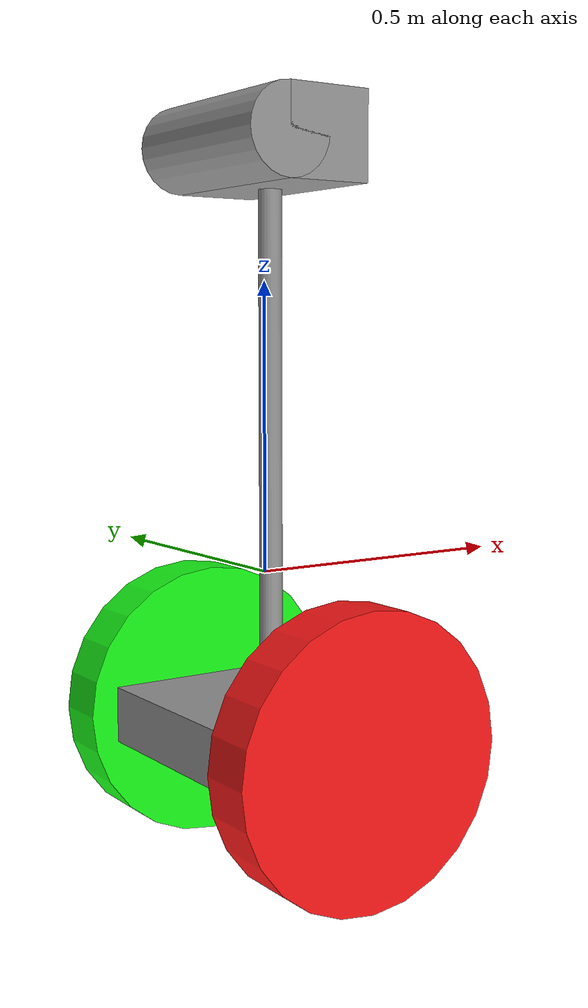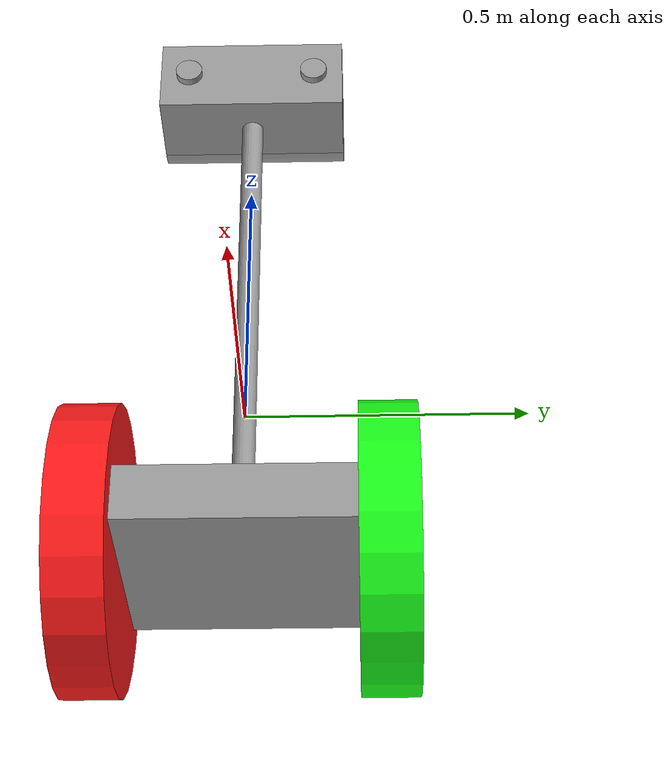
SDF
<?xml version='1.0'?>
<sdf version='1.6'>
  <model name='TwoWheelBalancer'>
    <link name='link_0'>
      <pose frame=''>0.012232 0 -0.27143 0 -0 0</pose>
      <inertial>
        <mass>1</mass>
        <inertia>
          <ixx>0.166667</ixx>
          <ixy>0</ixy>
          <ixz>0</ixz>
          <iyy>0.166667</iyy>
          <iyz>0</iyz>
          <izz>0.166667</izz>
        </inertia>
        <pose frame=''>0 0 0 0 -0 0</pose>
      </inertial>
      <self_collide>0</self_collide>
      <kinematic>0</kinematic>
      <visual name='visual'>
        <pose frame=''>0 0 0 0 -0 0</pose>
        <geometry>
          <box>
            <size>0.4 0.4 0.1</size>
          </box>
        </geometry>
        <material>
          <lighting>1</lighting>
          <script>
            <uri>file://media/materials/scripts/gazebo.material</uri>
            <name>Gazebo/Grey</name>
          </script>
          <shader type='pixel'>
            <normal_map>__default__</normal_map>
          </shader>
          <ambient>0.3 0.3 0.3 1</ambient>
          <diffuse>0.7 0.7 0.7 1</diffuse>
          <specular>0.01 0.01 0.01 1</specular>
          <emissive>0 0 0 1</emissive>
        </material>
        <transparency>0</transparency>
        <cast_shadows>1</cast_shadows>
      </visual>
      <collision name='collision'>
        <laser_retro>0</laser_retro>
        <max_contacts>10</max_contacts>
        <pose frame=''>0 0 0 0 -0 0</pose>
        <geometry>
          <box>
            <size>0.4 0.4 0.1</size>
          </box>
        </geometry>
        <surface>
          <friction>
            <ode>
              <mu>1</mu>
              <mu2>1</mu2>
              <fdir1>0 0 0</fdir1>
              <slip1>0</slip1>
              <slip2>0</slip2>
            </ode>
            <torsional>
              <coefficient>1</coefficient>
              <patch_radius>0</patch_radius>
              <surface_radius>0</surface_radius>
              <use_patch_radius>1</use_patch_radius>
              <ode>
                <slip>0</slip>
              </ode>
            </torsional>
          </friction>
          <bounce>
            <restitution_coefficient>0</restitution_coefficient>
            <threshold>1e+06</threshold>
          </bounce>
          <contact>
            <collide_without_contact>0</collide_without_contact>
            <collide_without_contact_bitmask>1</collide_without_contact_bitmask>
            <collide_bitmask>1</collide_bitmask>
            <ode>
              <soft_cfm>0</soft_cfm>
              <soft_erp>0.2</soft_erp>
              <kp>1e+13</kp>
              <kd>1</kd>
              <max_vel>0.01</max_vel>
              <min_depth>0</min_depth>
            </ode>
            <bullet>
              <split_impulse>1</split_impulse>
              <split_impulse_penetration_threshold>-0.01</split_impulse_penetration_threshold>
              <soft_cfm>0</soft_cfm>
              <soft_erp>0.2</soft_erp>
              <kp>1e+13</kp>
              <kd>1</kd>
            </bullet>
          </contact>
        </surface>
      </collision>
    </link>
    <link name='link_1'>
      <pose frame=''>0.012232 0.250024 -0.27143 0 -0 0</pose>
      <inertial>
        <mass>1</mass>
        <inertia>
          <ixx>0.145833</ixx>
          <ixy>0</ixy>
          <ixz>0</ixz>
          <iyy>0.145833</iyy>
          <iyz>0</iyz>
          <izz>0.125</izz>
        </inertia>
        <pose frame=''>0 0 0 0 -0 0</pose>
      </inertial>
      <self_collide>0</self_collide>
      <kinematic>0</kinematic>
      <gravity>1</gravity>
      <visual name='visual'>
        <pose frame=''>0 0 0 1.5707 -0 0</pose>
        <geometry>
          <cylinder>
            <radius>0.25</radius>
            <length>0.1</length>
          </cylinder>
        </geometry>
        <material>
          <lighting>1</lighting>
          <script>
            <uri>file://media/materials/scripts/gazebo.material</uri>
            <name>Gazebo/Grey</name>
          </script>
          <shader type='pixel'>
            <normal_map>__default__</normal_map>
          </shader>
          <ambient>0.1 1 0.1 1</ambient>
          <diffuse>0.1 1 0.1 1</diffuse>
          <specular>0.01 0.01 0.01 1</specular>
          <emissive>0 0 0 1</emissive>
        </material>
        <transparency>0</transparency>
        <cast_shadows>1</cast_shadows>
      </visual>
      <collision name='collision'>
        <laser_retro>0</laser_retro>
        <max_contacts>10</max_contacts>
        <pose frame=''>0 0 0 1.5707 -0 0</pose>
        <geometry>
          <cylinder>
            <radius>0.25</radius>
            <length>0.1</length>
          </cylinder>
        </geometry>
        <surface>
          <friction>
            <ode>
              <mu>1</mu>
              <mu2>1</mu2>
              <fdir1>0 0 0</fdir1>
              <slip1>0</slip1>
              <slip2>0</slip2>
            </ode>
            <torsional>
              <coefficient>1</coefficient>
              <patch_radius>0</patch_radius>
              <surface_radius>0</surface_radius>
              <use_patch_radius>1</use_patch_radius>
              <ode>
                <slip>0</slip>
              </ode>
            </torsional>
          </friction>
          <bounce>
            <restitution_coefficient>0</restitution_coefficient>
            <threshold>1e+06</threshold>
          </bounce>
          <contact>
            <collide_without_contact>0</collide_without_contact>
            <collide_without_contact_bitmask>1</collide_without_contact_bitmask>
            <collide_bitmask>1</collide_bitmask>
            <ode>
              <soft_cfm>0</soft_cfm>
              <soft_erp>0.2</soft_erp>
              <kp>1e+13</kp>
              <kd>1</kd>
              <max_vel>0.01</max_vel>
              <min_depth>0</min_depth>
            </ode>
            <bullet>
              <split_impulse>1</split_impulse>
              <split_impulse_penetration_threshold>-0.01</split_impulse_penetration_threshold>
              <soft_cfm>0</soft_cfm>
              <soft_erp>0.2</soft_erp>
              <kp>1e+13</kp>
              <kd>1</kd>
            </bullet>
          </contact>
        </surface>
      </collision>
    </link>
    <link name='link_1_clone'>
      <pose frame=''>0.012232 -0.250024 -0.27143 0 -0 0</pose>
      <inertial>
        <mass>1</mass>
        <inertia>
          <ixx>0.145833</ixx>
          <ixy>0</ixy>
          <ixz>0</ixz>
          <iyy>0.145833</iyy>
          <iyz>0</iyz>
          <izz>0.125</izz>
        </inertia>
        <pose frame=''>0 0 0 0 -0 0</pose>
      </inertial>
      <self_collide>0</self_collide>
      <kinematic>0</kinematic>
      <visual name='visual'>
        <pose frame=''>0 0 0 1.5707 -0 0</pose>
        <geometry>
          <cylinder>
            <radius>0.25</radius>
            <length>0.1</length>
          </cylinder>
        </geometry>
        <material>
          <lighting>1</lighting>
          <script>
            <uri>file://media/materials/scripts/gazebo.material</uri>
            <name>Gazebo/Grey</name>
          </script>
          <shader type='pixel'>
            <normal_map>__default__</normal_map>
          </shader>
          <ambient>1 0.1 0.1 1</ambient>
          <diffuse>1 0.1 0.1 1</diffuse>
          <specular>0.01 0.01 0.01 1</specular>
          <emissive>0 0 0 1</emissive>
        </material>
        <transparency>0</transparency>
        <cast_shadows>1</cast_shadows>
      </visual>
      <collision name='collision'>
        <laser_retro>0</laser_retro>
        <max_contacts>10</max_contacts>
        <pose frame=''>0 0 0 1.5707 -0 0</pose>
        <geometry>
          <cylinder>
            <radius>0.25</radius>
            <length>0.1</length>
          </cylinder>
        </geometry>
        <surface>
          <friction>
            <ode>
              <mu>1</mu>
              <mu2>1</mu2>
              <fdir1>0 0 0</fdir1>
              <slip1>0</slip1>
              <slip2>0</slip2>
            </ode>
            <torsional>
              <coefficient>1</coefficient>
              <patch_radius>0</patch_radius>
              <surface_radius>0</surface_radius>
              <use_patch_radius>1</use_patch_radius>
              <ode>
                <slip>0</slip>
              </ode>
            </torsional>
          </friction>
          <bounce>
            <restitution_coefficient>0</restitution_coefficient>
            <threshold>1e+06</threshold>
          </bounce>
          <contact>
            <collide_without_contact>0</collide_without_contact>
            <collide_without_contact_bitmask>1</collide_without_contact_bitmask>
            <collide_bitmask>1</collide_bitmask>
            <ode>
              <soft_cfm>0</soft_cfm>
              <soft_erp>0.2</soft_erp>
              <kp>1e+13</kp>
              <kd>1</kd>
              <max_vel>0.01</max_vel>
              <min_depth>0</min_depth>
            </ode>
            <bullet>
              <split_impulse>1</split_impulse>
              <split_impulse_penetration_threshold>-0.01</split_impulse_penetration_threshold>
              <soft_cfm>0</soft_cfm>
              <soft_erp>0.2</soft_erp>
              <kp>1e+13</kp>
              <kd>1</kd>
            </bullet>
          </contact>
        </surface>
      </collision>
    </link>
    <link name='link_2'>
      <pose frame=''>0.012232 0 -0.27143 0 -0 0</pose>
      <inertial>
        <mass>1</mass>
        <inertia>
          <ixx>0.145833</ixx>
          <ixy>0</ixy>
          <ixz>0</ixz>
          <iyy>0.145833</iyy>
          <iyz>0</iyz>
          <izz>0.125</izz>
        </inertia>
        <pose frame=''>0 0 0 0 -0 0</pose>
      </inertial>
      <self_collide>0</self_collide>
      <kinematic>0</kinematic>
      <visual name='visual'>
        <pose frame=''>0 0 0.5 0 -0 0</pose>
        <geometry>
          <cylinder>
            <radius>0.02</radius>
            <length>1</length>
          </cylinder>
        </geometry>
        <material>
          <lighting>1</lighting>
          <script>
            <uri>file://media/materials/scripts/gazebo.material</uri>
            <name>Gazebo/Grey</name>
          </script>
          <shader type='pixel'>
            <normal_map>__default__</normal_map>
          </shader>
          <ambient>0.3 0.3 0.3 1</ambient>
          <diffuse>0.7 0.7 0.7 1</diffuse>
          <specular>0.01 0.01 0.01 1</specular>
          <emissive>0 0 0 1</emissive>
        </material>
        <transparency>0</transparency>
        <cast_shadows>1</cast_shadows>
      </visual>
      <collision name='collision'>
        <laser_retro>0</laser_retro>
        <max_contacts>10</max_contacts>
        <pose frame=''>0 0 0.5 0 -0 0</pose>
        <geometry>
          <cylinder>
            <radius>0.02</radius>
            <length>1</length>
          </cylinder>
        </geometry>
        <surface>
          <friction>
            <ode>
              <mu>1</mu>
              <mu2>1</mu2>
              <fdir1>0 0 0</fdir1>
              <slip1>0</slip1>
              <slip2>0</slip2>
            </ode>
            <torsional>
              <coefficient>1</coefficient>
              <patch_radius>0</patch_radius>
              <surface_radius>0</surface_radius>
              <use_patch_radius>1</use_patch_radius>
              <ode>
                <slip>0</slip>
              </ode>
            </torsional>
          </friction>
          <bounce>
            <restitution_coefficient>0</restitution_coefficient>
            <threshold>1e+06</threshold>
          </bounce>
          <contact>
            <collide_without_contact>0</collide_without_contact>
            <collide_without_contact_bitmask>1</collide_without_contact_bitmask>
            <collide_bitmask>1</collide_bitmask>
            <ode>
              <soft_cfm>0</soft_cfm>
              <soft_erp>0.2</soft_erp>
              <kp>1e+13</kp>
              <kd>1</kd>
              <max_vel>0.01</max_vel>
              <min_depth>0</min_depth>
            </ode>
            <bullet>
              <split_impulse>1</split_impulse>
              <split_impulse_penetration_threshold>-0.01</split_impulse_penetration_threshold>
              <soft_cfm>0</soft_cfm>
              <soft_erp>0.2</soft_erp>
              <kp>1e+13</kp>
              <kd>1</kd>
            </bullet>
          </contact>
        </surface>
      </collision>
    </link>
    <link name='link_3'>
      <pose frame=''>0.012232 0 0.728572 0 -0 0</pose>
      <inertial>
        <mass>1</mass>
        <inertia>
          <ixx>0.166667</ixx>
          <ixy>0</ixy>
          <ixz>0</ixz>
          <iyy>0.166667</iyy>
          <iyz>0</iyz>
          <izz>0.166667</izz>
        </inertia>
        <pose frame=''>0 0 0 0 -0 0</pose>
      </inertial>
      <self_collide>0</self_collide>
      <kinematic>0</kinematic>
      <visual name='visual'>
        <pose frame=''>0 0 0 0 -0 0</pose>
        <geometry>
          <box>
            <size>0.15 0.35 0.15</size>
          </box>
        </geometry>
        <material>
          <lighting>1</lighting>
          <script>
            <uri>file://media/materials/scripts/gazebo.material</uri>
            <name>Gazebo/Grey</name>
          </script>
          <shader type='pixel'>
            <normal_map>__default__</normal_map>
          </shader>
          <ambient>0.3 0.3 0.3 1</ambient>
          <diffuse>0.7 0.7 0.7 1</diffuse>
          <specular>0.01 0.01 0.01 1</specular>
          <emissive>0 0 0 1</emissive>
        </material>
        <transparency>0</transparency>
        <cast_shadows>1</cast_shadows>
      </visual>
      <collision name='collision'>
        <laser_retro>0</laser_retro>
        <max_contacts>10</max_contacts>
        <pose frame=''>0 0 0 0 -0 0</pose>
        <geometry>
          <box>
            <size>0.15 0.35 0.15</size>
          </box>
        </geometry>
        <surface>
          <friction>
            <ode>
              <mu>1</mu>
              <mu2>1</mu2>
              <fdir1>0 0 0</fdir1>
              <slip1>0</slip1>
              <slip2>0</slip2>
            </ode>
            <torsional>
              <coefficient>1</coefficient>
              <patch_radius>0</patch_radius>
              <surface_radius>0</surface_radius>
              <use_patch_radius>1</use_patch_radius>
              <ode>
                <slip>0</slip>
              </ode>
            </torsional>
          </friction>
          <bounce>
            <restitution_coefficient>0</restitution_coefficient>
            <threshold>1e+06</threshold>
          </bounce>
          <contact>
            <collide_without_contact>0</collide_without_contact>
            <collide_without_contact_bitmask>1</collide_without_contact_bitmask>
            <collide_bitmask>1</collide_bitmask>
            <ode>
              <soft_cfm>0</soft_cfm>
              <soft_erp>0.2</soft_erp>
              <kp>1e+13</kp>
              <kd>1</kd>
              <max_vel>0.01</max_vel>
              <min_depth>0</min_depth>
            </ode>
            <bullet>
              <split_impulse>1</split_impulse>
              <split_impulse_penetration_threshold>-0.01</split_impulse_penetration_threshold>
              <soft_cfm>0</soft_cfm>
              <soft_erp>0.2</soft_erp>
              <kp>1e+13</kp>
              <kd>1</kd>
            </bullet>
          </contact>
        </surface>
      </collision>
    </link>
    <link name='link_5'>
      <pose frame=''>0.092232 -0.12 0.728571 0 -0 0</pose>
      <inertial>
        <mass>1</mass>
        <inertia>
          <ixx>0.145833</ixx>
          <ixy>0</ixy>
          <ixz>0</ixz>
          <iyy>0.145833</iyy>
          <iyz>0</iyz>
          <izz>0.125</izz>
        </inertia>
        <pose frame=''>0 0 0 0 -0 0</pose>
      </inertial>
      <self_collide>0</self_collide>
      <kinematic>0</kinematic>
      <visual name='visual'>
        <pose frame=''>0 0 0 0 1.5707 0</pose>
        <geometry>
          <cylinder>
            <radius>0.025</radius>
            <length>0.02</length>
          </cylinder>
        </geometry>
        <material>
          <lighting>1</lighting>
          <script>
            <uri>file://media/materials/scripts/gazebo.material</uri>
            <name>Gazebo/Grey</name>
          </script>
          <shader type='pixel'>
            <normal_map>__default__</normal_map>
          </shader>
          <ambient>0 0 0 1</ambient>
          <diffuse>0 0 0 1</diffuse>
          <specular>0.01 0.01 0.01 1</specular>
          <emissive>0 0 0 1</emissive>
        </material>
        <transparency>0</transparency>
        <cast_shadows>1</cast_shadows>
      </visual>
      <collision name='collision'>
        <laser_retro>0</laser_retro>
        <max_contacts>10</max_contacts>
        <pose frame=''>0 0 0 0 -0 0</pose>
        <geometry>
          <cylinder>
            <radius>0.025</radius>
            <length>0.02</length>
          </cylinder>
        </geometry>
        <surface>
          <friction>
            <ode>
              <mu>1</mu>
              <mu2>1</mu2>
              <fdir1>0 0 0</fdir1>
              <slip1>0</slip1>
              <slip2>0</slip2>
            </ode>
            <torsional>
              <coefficient>1</coefficient>
              <patch_radius>0</patch_radius>
              <surface_radius>0</surface_radius>
              <use_patch_radius>1</use_patch_radius>
              <ode>
                <slip>0</slip>
              </ode>
            </torsional>
          </friction>
          <bounce>
            <restitution_coefficient>0</restitution_coefficient>
            <threshold>1e+06</threshold>
          </bounce>
          <contact>
            <collide_without_contact>0</collide_without_contact>
            <collide_without_contact_bitmask>1</collide_without_contact_bitmask>
            <collide_bitmask>1</collide_bitmask>
            <ode>
              <soft_cfm>0</soft_cfm>
              <soft_erp>0.2</soft_erp>
              <kp>1e+13</kp>
              <kd>1</kd>
              <max_vel>0.01</max_vel>
              <min_depth>0</min_depth>
            </ode>
            <bullet>
              <split_impulse>1</split_impulse>
              <split_impulse_penetration_threshold>-0.01</split_impulse_penetration_threshold>
              <soft_cfm>0</soft_cfm>
              <soft_erp>0.2</soft_erp>
              <kp>1e+13</kp>
              <kd>1</kd>
            </bullet>
          </contact>
        </surface>
      </collision>
    </link>
    <link name='link_5_clone'>
      <pose frame=''>0.092232 0.12 0.728571 0 -0 0</pose>
      <inertial>
        <mass>1</mass>
        <inertia>
          <ixx>0.145833</ixx>
          <ixy>0</ixy>
          <ixz>0</ixz>
          <iyy>0.145833</iyy>
          <iyz>0</iyz>
          <izz>0.125</izz>
        </inertia>
        <pose frame=''>0 0 0 0 -0 0</pose>
      </inertial>
      <self_collide>0</self_collide>
      <kinematic>0</kinematic>
      <visual name='visual'>
        <pose frame=''>0 0 0 0 1.5707 0</pose>
        <geometry>
          <cylinder>
            <radius>0.025</radius>
            <length>0.02</length>
          </cylinder>
        </geometry>
        <material>
          <lighting>1</lighting>
          <script>
            <uri>file://media/materials/scripts/gazebo.material</uri>
            <name>Gazebo/Grey</name>
          </script>
          <shader type='pixel'>
            <normal_map>__default__</normal_map>
          </shader>
          <ambient>0 0 0 1</ambient>
          <diffuse>0 0 0 1</diffuse>
          <specular>0.01 0.01 0.01 1</specular>
          <emissive>0 0 0 1</emissive>
        </material>
        <transparency>0</transparency>
        <cast_shadows>1</cast_shadows>
      </visual>
      <collision name='collision'>
        <laser_retro>0</laser_retro>
        <max_contacts>10</max_contacts>
        <pose frame=''>0 0 0 0 -0 0</pose>
        <geometry>
          <cylinder>
            <radius>0.025</radius>
            <length>0.02</length>
          </cylinder>
        </geometry>
        <surface>
          <friction>
            <ode>
              <mu>1</mu>
              <mu2>1</mu2>
              <fdir1>0 0 0</fdir1>
              <slip1>0</slip1>
              <slip2>0</slip2>
            </ode>
            <torsional>
              <coefficient>1</coefficient>
              <patch_radius>0</patch_radius>
              <surface_radius>0</surface_radius>
              <use_patch_radius>1</use_patch_radius>
              <ode>
                <slip>0</slip>
              </ode>
            </torsional>
          </friction>
          <bounce>
            <restitution_coefficient>0</restitution_coefficient>
            <threshold>1e+06</threshold>
          </bounce>
          <contact>
            <collide_without_contact>0</collide_without_contact>
            <collide_without_contact_bitmask>1</collide_without_contact_bitmask>
            <collide_bitmask>1</collide_bitmask>
            <ode>
              <soft_cfm>0</soft_cfm>
              <soft_erp>0.2</soft_erp>
              <kp>1e+13</kp>
              <kd>1</kd>
              <max_vel>0.01</max_vel>
              <min_depth>0</min_depth>
            </ode>
            <bullet>
              <split_impulse>1</split_impulse>
              <split_impulse_penetration_threshold>-0.01</split_impulse_penetration_threshold>
              <soft_cfm>0</soft_cfm>
              <soft_erp>0.2</soft_erp>
              <kp>1e+13</kp>
              <kd>1</kd>
            </bullet>
          </contact>
        </surface>
      </collision>
    </link>
    <link name='link_6'>
      <pose frame=''>-0.062768 0 0.728572 1.57079 -0 0</pose>
      <inertial>
        <mass>1</mass>
        <inertia>
          <ixx>0.145833</ixx>
          <ixy>0</ixy>
          <ixz>0</ixz>
          <iyy>0.145833</iyy>
          <iyz>0</iyz>
          <izz>0.125</izz>
        </inertia>
        <pose frame=''>0 0 0 0 -0 0</pose>
      </inertial>
      <self_collide>0</self_collide>
      <kinematic>0</kinematic>
      <visual name='visual'>
        <pose frame=''>0 0 0 0 -0 0</pose>
        <geometry>
          <cylinder>
            <radius>0.075</radius>
            <length>0.35</length>
          </cylinder>
        </geometry>
        <material>
          <lighting>1</lighting>
          <script>
            <uri>file://media/materials/scripts/gazebo.material</uri>
            <name>Gazebo/Grey</name>
          </script>
          <shader type='pixel'>
            <normal_map>__default__</normal_map>
          </shader>
          <ambient>0.3 0.3 0.3 1</ambient>
          <diffuse>0.7 0.7 0.7 1</diffuse>
          <specular>0.01 0.01 0.01 1</specular>
          <emissive>0 0 0 1</emissive>
        </material>
        <transparency>0</transparency>
        <cast_shadows>1</cast_shadows>
      </visual>
      <collision name='collision'>
        <laser_retro>0</laser_retro>
        <max_contacts>10</max_contacts>
        <pose frame=''>0 0 0 0 -0 0</pose>
        <geometry>
          <cylinder>
            <radius>0.075</radius>
            <length>0.35</length>
          </cylinder>
        </geometry>
        <surface>
          <friction>
            <ode>
              <mu>1</mu>
              <mu2>1</mu2>
              <fdir1>0 0 0</fdir1>
              <slip1>0</slip1>
              <slip2>0</slip2>
            </ode>
            <torsional>
              <coefficient>1</coefficient>
              <patch_radius>0</patch_radius>
              <surface_radius>0</surface_radius>
              <use_patch_radius>1</use_patch_radius>
              <ode>
                <slip>0</slip>
              </ode>
            </torsional>
          </friction>
          <bounce>
            <restitution_coefficient>0</restitution_coefficient>
            <threshold>1e+06</threshold>
          </bounce>
          <contact>
            <collide_without_contact>0</collide_without_contact>
            <collide_without_contact_bitmask>1</collide_without_contact_bitmask>
            <collide_bitmask>1</collide_bitmask>
            <ode>
              <soft_cfm>0</soft_cfm>
              <soft_erp>0.2</soft_erp>
              <kp>1e+13</kp>
              <kd>1</kd>
              <max_vel>0.01</max_vel>
              <min_depth>0</min_depth>
            </ode>
            <bullet>
              <split_impulse>1</split_impulse>
              <split_impulse_penetration_threshold>-0.01</split_impulse_penetration_threshold>
              <soft_cfm>0</soft_cfm>
              <soft_erp>0.2</soft_erp>
              <kp>1e+13</kp>
              <kd>1</kd>
            </bullet>
          </contact>
        </surface>
      </collision>
    </link>
    <joint name='link_0_JOINT_0' type='revolute'>
      <parent>link_0</parent>
      <child>link_1</child>
      <pose frame=''>0 0 0 0 -0 0</pose>
      <axis>
        <xyz>0 0 1</xyz>
        <use_parent_model_frame>0</use_parent_model_frame>
        <limit>
          <lower>-1.79769e+308</lower>
          <upper>1.79769e+308</upper>
          <effort>-1</effort>
          <velocity>-1</velocity>
        </limit>
        <dynamics>
          <spring_reference>0</spring_reference>
          <spring_stiffness>0</spring_stiffness>
          <damping>0</damping>
          <friction>0</friction>
        </dynamics>
      </axis>
      <physics>
        <ode>
          <limit>
            <cfm>0</cfm>
            <erp>0.2</erp>
          </limit>
          <suspension>
            <cfm>0</cfm>
            <erp>0.2</erp>
          </suspension>
        </ode>
      </physics>
    </joint>
    <joint name='link_0_JOINT_1' type='revolute'>
      <parent>link_0</parent>
      <child>link_1_clone</child>
      <pose frame=''>0 0 0 0 -0 0</pose>
      <axis>
        <xyz>0 0 1</xyz>
        <use_parent_model_frame>0</use_parent_model_frame>
        <limit>
          <lower>-1.79769e+308</lower>
          <upper>1.79769e+308</upper>
          <effort>-1</effort>
          <velocity>-1</velocity>
        </limit>
        <dynamics>
          <spring_reference>0</spring_reference>
          <spring_stiffness>0</spring_stiffness>
          <damping>0</damping>
          <friction>0</friction>
        </dynamics>
      </axis>
      <physics>
        <ode>
          <limit>
            <cfm>0</cfm>
            <erp>0.2</erp>
          </limit>
          <suspension>
            <cfm>0</cfm>
            <erp>0.2</erp>
          </suspension>
        </ode>
      </physics>
    </joint>
    <joint name='link_0_JOINT_2' type='fixed'>
      <parent>link_0</parent>
      <child>link_2</child>
      <pose frame=''>0 0 0 0 -0 0</pose>
      <physics>
        <ode>
          <limit>
            <cfm>0</cfm>
            <erp>0.2</erp>
          </limit>
          <suspension>
            <cfm>0</cfm>
            <erp>0.2</erp>
          </suspension>
        </ode>
      </physics>
    </joint>
    <joint name='link_2_JOINT_3' type='revolute'>
      <parent>link_2</parent>
      <child>link_3</child>
      <pose frame=''>0 0 0 0 -0 0</pose>
      <axis>
        <xyz>1 0 0</xyz>
        <use_parent_model_frame>0</use_parent_model_frame>
        <limit>
          <lower>-1.79769e+308</lower>
          <upper>1.79769e+308</upper>
          <effort>-1</effort>
          <velocity>-1</velocity>
        </limit>
        <dynamics>
          <spring_reference>0</spring_reference>
          <spring_stiffness>0</spring_stiffness>
          <damping>0</damping>
          <friction>0</friction>
        </dynamics>
      </axis>
      <physics>
        <ode>
          <limit>
            <cfm>0</cfm>
            <erp>0.2</erp>
          </limit>
          <suspension>
            <cfm>0</cfm>
            <erp>0.2</erp>
          </suspension>
        </ode>
      </physics>
    </joint>
    <joint name='link_3_JOINT_4' type='fixed'>
      <parent>link_3</parent>
      <child>link_5</child>
      <pose frame=''>0 0 0 0 -0 0</pose>
      <physics>
        <ode>
          <limit>
            <cfm>0</cfm>
            <erp>0.2</erp>
          </limit>
          <suspension>
            <cfm>0</cfm>
            <erp>0.2</erp>
          </suspension>
        </ode>
      </physics>
    </joint>
    <joint name='link_3_JOINT_5' type='fixed'>
      <parent>link_3</parent>
      <child>link_5_clone</child>
      <pose frame=''>0 0 0 0 -0 0</pose>
      <physics>
        <ode>
          <limit>
            <cfm>0</cfm>
            <erp>0.2</erp>
          </limit>
          <suspension>
            <cfm>0</cfm>
            <erp>0.2</erp>
          </suspension>
        </ode>
      </physics>
    </joint>
    <joint name='link_3_JOINT_6' type='revolute'>
      <parent>link_3</parent>
      <child>link_6</child>
      <pose frame=''>0 0 0 0 -0 0</pose>
      <axis>
        <xyz>1 0 0</xyz>
        <use_parent_model_frame>0</use_parent_model_frame>
        <limit>
          <lower>-1.79769e+308</lower>
          <upper>1.79769e+308</upper>
          <effort>-1</effort>
          <velocity>-1</velocity>
        </limit>
        <dynamics>
          <spring_reference>0</spring_reference>
          <spring_stiffness>0</spring_stiffness>
          <damping>0</damping>
          <friction>0</friction>
        </dynamics>
      </axis>
      <physics>
        <ode>
          <limit>
            <cfm>0</cfm>
            <erp>0.2</erp>
          </limit>
          <suspension>
            <cfm>0</cfm>
            <erp>0.2</erp>
          </suspension>
        </ode>
      </physics>
    </joint>
    <static>0</static>
    <allow_auto_disable>1</allow_auto_disable>
  </model>
</sdf>
